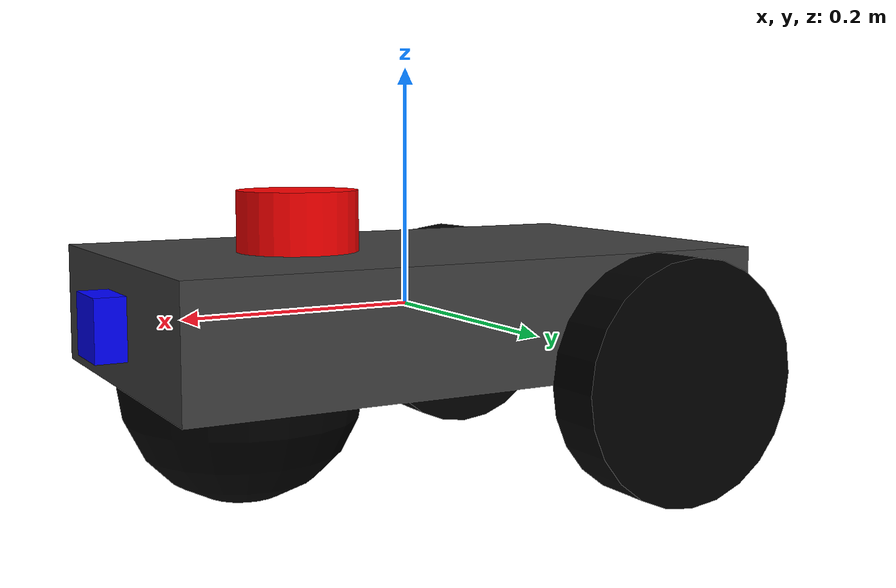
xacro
<?xml version="1.0"?>

<robot name="differential_drive_robot" xmlns:xacro="http://www.ros.org/wiki/xacro">

    <!-- Robot Parameters -->
    <xacro:property name="PI" value="3.14159265"/>
    <xacro:property name="body_length" value="0.5"/>
    <xacro:property name="body_width" value="0.3"/>
    <xacro:property name="body_height" value="0.1"/>
    <xacro:property name="body_density" value="7850.0"/> <!-- Steel -->
    <xacro:property name="body_mass" value="${body_density * body_length * body_height * body_width}"/>
    <xacro:property name="body_inertia_x" value="${1.0/12.0 * body_mass * (body_height*body_height + body_width*body_width)}"/>
    <xacro:property name="body_inertia_y" value="${1.0/12.0 * body_mass * (body_length*body_length + body_height*body_height)}"/>
    <xacro:property name="body_inertia_z" value="${1.0/12.0 * body_mass * (body_length*body_length + body_width*body_width)}"/>

    <xacro:property name="wheel_radius" value="0.1"/>
    <xacro:property name="wheel_width" value="0.05"/>
    <xacro:property name="wheel_separation" value="${body_width + wheel_width}"/>
    <xacro:property name="wheel_offset" value="${body_length/2 - wheel_radius}"/>
    <xacro:property name="wheel_density" value="900"/> <!-- Ruber -->
    <xacro:property name="wheel_mass" value="${wheel_density * PI * wheel_radius * wheel_radius * wheel_width}"/>
    <xacro:property name="wheel_inertia_x" value="${1.0/12.0 * wheel_mass * (3*wheel_radius*wheel_radius + wheel_width*wheel_width)}"/>
    <xacro:property name="wheel_inertia_y" value="${1.0/12.0 * wheel_mass * (3*wheel_radius*wheel_radius + wheel_width*wheel_width)}"/>
    <xacro:property name="wheel_inertia_z" value="${1.0/2.0 * wheel_mass * wheel_radius * wheel_radius}"/>

    <xacro:property name="caster_radius" value="0.1"/>
    <xacro:property name="caster_offset" value="${body_length/2 - caster_radius}"/>
    <xacro:property name="caster_density" value="0.1"/>
    <xacro:property name="caster_mass" value="${caster_density * 4.0/3.0 * PI * caster_radius * caster_radius * caster_radius}"/>
    <xacro:property name="caster_inertia_x" value="${2.0/5.0 * caster_mass * caster_radius * caster_radius}"/>
    <xacro:property name="caster_inertia_y" value="${2.0/5.0 * caster_mass * caster_radius * caster_radius}"/>
    <xacro:property name="caster_inertia_z" value="${2.0/5.0 * caster_mass * caster_radius * caster_radius}"/>

    <xacro:property name="lidar_radius" value="0.05"/>
    <xacro:property name="lidar_height" value="0.05"/>
    <xacro:property name="lidar_mass" value="0.2"/>
    <xacro:property name="lidar_offset_x" value="0.1"/> <xacro:property name="lidar_offset_z" value="${body_height/2 + lidar_height/2}"/>

    <xacro:property name="camera_size" value="0.05"/>
    <xacro:property name="camera_mass" value="0.1"/>
    <xacro:property name="camera_offset_x" value="${body_length/2}"/> <xacro:property name="camera_offset_z" value="0.0"/>

    <!-- Control Parameters -->
    <xacro:property name="max_linear_acceleration" value="10"/>

    <!-- Links -->

    <!-- Body Link -->
    <link name="body_link">
        <visual>
            <origin xyz="0.0 0.0 0.0" rpy="0.0 0.0 0.0"/>
            <geometry>
                <box size="${body_length} ${body_width} ${body_height}"/>
            </geometry>
            <material name="body_material">
                <color rgba="0.25 0.25 0.25 1.0"/>
            </material>
        </visual>
        <collision>
            <origin xyz="0.0 0.0 0.0" rpy="0.0 0.0 0.0"/>
            <geometry>
                <box size="${body_length} ${body_width} ${body_height}"/>
            </geometry>
        </collision>
        <inertial>
            <mass value="10"/>
            <inertia ixx="${body_inertia_x}" ixy="0.0" ixz="0.0" iyy="${body_inertia_y}" iyz="0" izz="${body_inertia_z}"/>
            <origin xyz="0 0 0" rpy="0 0 0"/>
        </inertial>
    </link>

    <!-- Left Wheel -->
    <link name="left_wheel_link">
        <visual>
            <origin xyz="0.0 0.0 0.0" rpy="1.570795 0.0 0.0"/>
            <geometry>
                <cylinder radius="${wheel_radius}" length="${wheel_width}"/>
            </geometry>
            <material name="wheel_material">
                <color rgba="0.0 0.0 0.0 1.0"/>
            </material>
        </visual>
        <collision>
            <origin xyz="0.0 0.0 0.0" rpy="1.570795 0.0 0.0"/>
            <geometry>
                <cylinder radius="${wheel_radius}" length="${wheel_width}"/>
            </geometry>
        </collision>
        <inertial>
            <mass value="2"/>
            <inertia ixx="${wheel_inertia_x}" ixy="0.0" ixz="0.0" iyy="${wheel_inertia_y}" iyz="0" izz="${wheel_inertia_z}"/>
            <origin xyz="0.0 0.0 0.0" rpy="1.570795 0.0 0.0"/>
        </inertial>
    </link>

    <!-- Right Wheel -->
    <link name="right_wheel_link">
        <visual>
            <origin xyz="0.0 0.0 0.0" rpy="1.570795 0.0 0.0"/>
            <geometry>
                <cylinder radius="${wheel_radius}" length="${wheel_width}"/>
            </geometry>
            <material name="wheel_material">
                <color rgba="0.0 0.0 0.0 1.0"/>
            </material>
        </visual>
        <collision>
            <origin xyz="0.0 0.0 0.0" rpy="1.570795 0.0 0.0"/>
            <geometry>
                <cylinder radius="${wheel_radius}" length="${wheel_width}"/>
            </geometry>
        </collision>
        <inertial>
            <mass value="2"/>
            <inertia ixx="${wheel_inertia_x}" ixy="0.0" ixz="0.0" iyy="${wheel_inertia_y}" iyz="0" izz="${wheel_inertia_z}"/>
            <origin xyz="0.0 0.0 0.0" rpy="1.570795 0.0 0.0"/>
        </inertial>
    </link>

    <!-- Caster Wheel -->
    <link name="caster_link">
        <visual>
            <origin xyz="0.0 0.0 0.0" rpy="0.0 0.0 0.0"/>
            <geometry>
                <sphere radius="${caster_radius}"/>
            </geometry>
            <material name="caster_material">
                <color rgba="0.0 0.0 0.0 1.0"/>
            </material>
        </visual>
        <collision>
            <origin xyz="0.0 0.0 0.0" rpy="0.0 0.0 0.0"/>
            <geometry>
                <sphere radius="${caster_radius}"/>
            </geometry>
        </collision>
        <inertial>
            <mass value="0.5"/>
            <inertia ixx="${caster_inertia_x}" ixy="0.0" ixz="0.0" iyy="${caster_inertia_y}" iyz="0" izz="${caster_inertia_z}"/>
            <origin xyz="0 0 0" rpy="0 0 0"/>
        </inertial>
    </link>

    <link name="lidar_link">
        <visual>
            <geometry>
                <cylinder radius="${lidar_radius}" length="${lidar_height}"/>
            </geometry>
            <material name="lidar_mat">
                <color rgba="1.0 0.0 0.0 1.0"/>
            </material>
        </visual>
        <collision>
            <geometry>
                <cylinder radius="${lidar_radius}" length="${lidar_height}"/>
            </geometry>
        </collision>
        <inertial>
            <mass value="${lidar_mass}"/>
            <inertia ixx="${(1/12) * lidar_mass * (3*lidar_radius*lidar_radius + lidar_height*lidar_height)}" ixy="0" ixz="0"
                     iyy="${(1/12) * lidar_mass * (3*lidar_radius*lidar_radius + lidar_height*lidar_height)}" iyz="0"
                     izz="${(1/2) * lidar_mass * lidar_radius*lidar_radius}"/>
        </inertial>
    </link>

    <joint name="lidar_joint" type="fixed">
        <parent link="body_link"/>
        <child link="lidar_link"/>
        <origin xyz="${lidar_offset_x} 0 ${lidar_offset_z}" rpy="0 0 0"/>
    </joint>

    <link name="camera_link">
        <visual>
            <geometry>
                <box size="${camera_size} ${camera_size} ${camera_size}"/>
            </geometry>
            <material name="camera_mat">
                <color rgba="0.0 0.0 1.0 1.0"/>
            </material>
        </visual>
        <collision>
            <geometry>
                <box size="${camera_size} ${camera_size} ${camera_size}"/>
            </geometry>
        </collision>
        <inertial>
            <mass value="${camera_mass}"/>
            <inertia ixx="${(1/12) * camera_mass * (2*camera_size*camera_size)}" ixy="0" ixz="0"
                     iyy="${(1/12) * camera_mass * (2*camera_size*camera_size)}" iyz="0"
                     izz="${(1/12) * camera_mass * (2*camera_size*camera_size)}" />
        </inertial>
    </link>

    <joint name="camera_joint" type="fixed">
        <parent link="body_link"/>
        <child link="camera_link"/>
        <origin xyz="${camera_offset_x} 0 ${camera_offset_z}" rpy="0 0 0"/>
    </joint>

    <!-- Joints -->

    <!-- Left Wheel Joint -->
    <joint name="left_wheel_joint" type="continuous">
        <origin xyz="-${wheel_offset} ${wheel_separation/2} -${wheel_radius/2}" rpy="0 0 0"/>
        <parent link="body_link"/>
        <child link="left_wheel_link"/>
        <axis xyz="0 1 0"/>
        <limit effort="100" velocity="10.0"/>
        <dynamics damping="0.1" friction="0.1"/>
    </joint>

    <!-- Right Wheel Joint -->
    <joint name="right_wheel_joint" type="continuous">
        <origin xyz="-${wheel_offset} ${-wheel_separation/2} -${wheel_radius/2}" rpy="0 0 0"/>
        <parent link="body_link"/>
        <child link="right_wheel_link"/>
        <axis xyz="0 1 0"/>
        <limit effort="100" velocity="10.0"/>
        <dynamics damping="0.1" friction="0.1"/>
    </joint>

    <!-- Caster Wheel Joint (fixed) -->
    <joint name="caster_joint" type="fixed">
        <origin xyz="${caster_offset} 0 -${caster_radius/2}" rpy="0 0 0"/>
        <parent link="body_link"/>
        <child link="caster_link"/>
    </joint>

    <!-- Gazebo Parameters -->
    <gazebo reference="body_link">
        <mu1>1.0</mu1>
        <mu2>1.0</mu2>
    </gazebo>

    <gazebo reference="right_wheel_link">
        <mu1>1.0</mu1>
        <mu2>1.0</mu2>
    </gazebo>

    <gazebo reference="left_wheel_link">
        <mu1>1.0</mu1>
        <mu2>1.0</mu2>
    </gazebo>

    <gazebo reference="caster_link">
        <mu1>0.000001</mu1>
        <mu2>0.000001</mu2>
    </gazebo>

    <!-- Gazebo Plugins -->
    <gazebo>
        <plugin filename="gz-sim-diff-drive-system" name="gz::sim::systems::DiffDrive">
            <right_joint>right_wheel_joint</right_joint>
            <left_joint>left_wheel_joint</left_joint>
            <wheel_separation>${wheel_separation}</wheel_separation>
            <wheel_radius>${wheel_radius}</wheel_radius>
            <max_linear_acceleration>${max_linear_acceleration}</max_linear_acceleration>
            <odom_publish_frequency>100</odom_publish_frequency>
            <topic>cmd_vel</topic>
            <odom_topic>odom</odom_topic>
        </plugin>

        <plugin filename="gz-sim-joint-state-publisher-system" name="gz::sim::systems::JointStatePublisher">
            <topic>joint_states</topic>
            <joint_name>right_wheel_joint</joint_name>
            <joint_name>left_wheel_joint</joint_name>
        </plugin>
    </gazebo>

    <gazebo reference="lidar_link">
        <sensor name="lidar" type="gpu_lidar">
            <always_on>true</always_on>
            <visualize>true</visualize>
            <topic>scan</topic>
            <update_rate>10</update_rate>
            <ray>
                <scan>
                    <horizontal>
                        <samples>360</samples>
                        <resolution>1.000000</resolution>
                        <min_angle>-3.14</min_angle>
                        <max_angle>3.14</max_angle>
                    </horizontal>
                </scan>
                <range>
                    <min>0.120000</min>
                    <max>10.0</max>
                    <resolution>0.015000</resolution>
                </range>
                <noise>
                    <type>gaussian</type>
                    <mean>0.0</mean>
                    <stddev>0.01</stddev>
                </noise>
            </ray>
        </sensor>
    </gazebo>

    <gazebo reference="camera_link">
        <sensor name="camera" type="camera">
            <always_on>true</always_on>
            <visualize>true</visualize>
            <topic>camera/image_raw</topic>
            <update_rate>30</update_rate>
            <camera>
                <horizontal_fov>1.089</horizontal_fov>
                <image>
                    <format>R8G8B8</format>
                    <width>640</width>
                    <height>480</height>
                </image>
                <clip>
                    <near>0.05</near>
                    <far>8.0</far>
                </clip>
            </camera>
        </sensor>
    </gazebo>

</robot>
